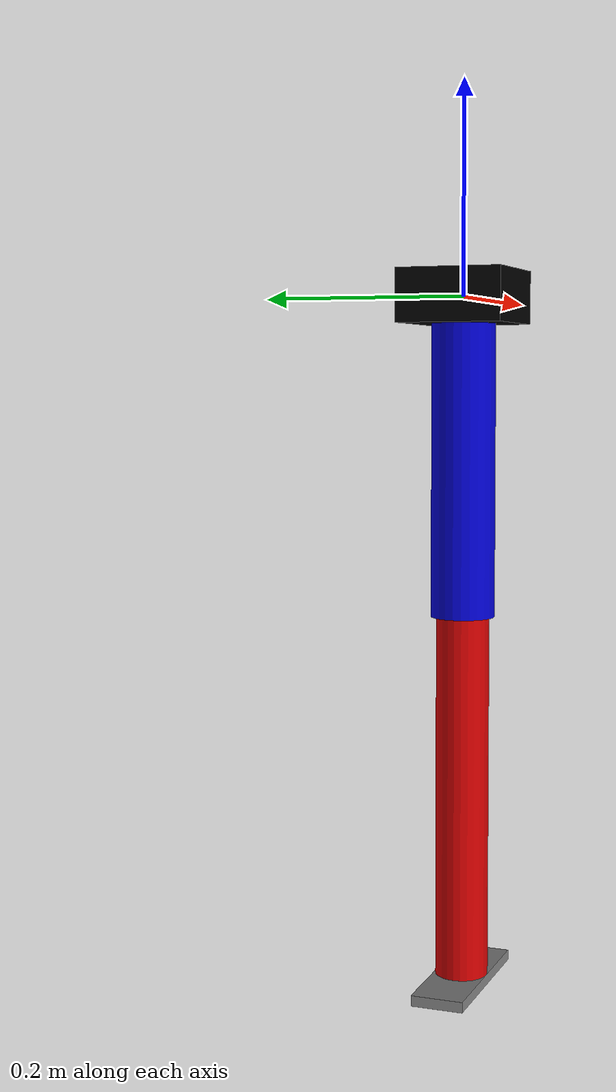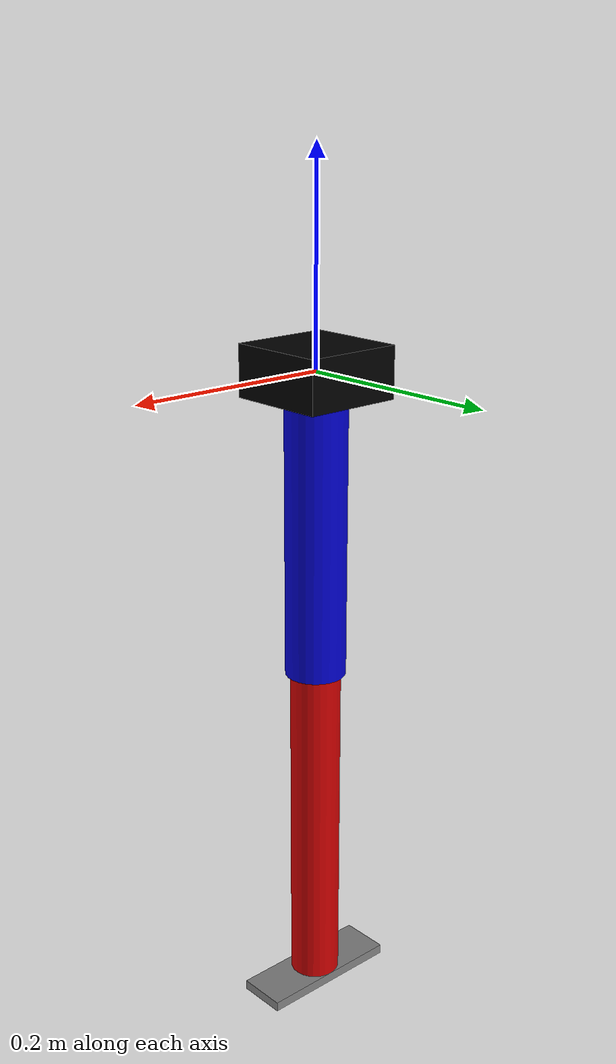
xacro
<?xml version="1.0"?>
<robot name="exoskeleton_leg" xmlns:xacro="http://www.ros.org/wiki/xacro">

<!-- Base Link -->
<link name="base_link">
  <inertial>
    <mass value="1.0"/>
    <inertia ixx="0.01" ixy="0" ixz="0" iyy="0.01" iyz="0" izz="0.01"/>
  </inertial>
  <visual>
    <geometry><box size="0.1 0.1 0.05"/></geometry>
    <material name="black"><color rgba="0 0 0 1"/></material>
  </visual>
  <collision><geometry><box size="0.1 0.1 0.05"/></geometry></collision>
</link>

<!-- Hip Joint -->
<joint name="hip_joint" type="revolute">
  <parent link="base_link"/>
  <child link="thigh_link"/>
  <!-- Position hip joint at the bottom of base_link (assuming base_link height is negligible) -->
  <origin xyz="0 0 -.15" rpy="0 0 0"/>
  <axis xyz="0 0 1"/>
  <dynamics damping="0.1" friction="0.01"/>
  <!--
    ISO 13485 Compliance: Prevents Excessive internal rotation (> 45°) and excessive external rotation (> 45°)
    internal rotation: 0 ~ 45°
    external rotation: 0 ~ 45°
    walking: 20° ~ 30°
  -->
  <limit effort="350" velocity="3.0" lower="-0.7" upper="0.7"/> <!-- 0.7rad ~= 40° -->
  <safety_controller k_velocity="20" soft_lower_limit="-0.665" soft_upper_limit="0.665"/> <!-- 0.665rad ~= 38° -->

</joint>

<link name="thigh_link">
  <visual>
    <geometry><cylinder length="0.3" radius="0.03"/></geometry>
    <material name="blue"><color rgba="0 0 0.8 1"/></material>
  </visual>
  <collision>
    <geometry><cylinder length="0.3" radius="0.03"/></geometry>
  </collision>

  <!-- Inertial (Adj. accordingly to the real setup) -->
  <inertial>
    <origin xyz="0 0 0.15"/>  <!-- certer of mass in the middle -->
    <mass value="0.5"/>
    <inertia ixx="0.00375" ixy="0" ixz="0" iyy="0.00375" iyz="0" izz="0.00045"/>
  </inertial>

  <!-- Gazebo Attr -->
  <gazebo reference="thigh_link">
    <mu1>0.2</mu1>  <!-- Contact Friction Coefficient -->
    <mu2>0.2</mu2>
    <kp>1000000</kp>  <!-- Contact Stiffness [N/m] -->
    <kd>100</kd>      <!-- Contact Damping [N·s/m] -->
  </gazebo>
</link>

<!-- Knee Joint -->
<joint name="knee_joint" type="revolute">
  <parent link="thigh_link"/>
  <child link="shank_link"/>
  <!-- Position knee joint at the end of thigh_link -->
  <origin xyz="0 0 -0.15" rpy="0 0 0"/> <!-- Negative Z to move down from thigh_link -->
  <axis xyz="0 1 0"/>
  <dynamics damping="0.05" friction="0.005"/>
  <!--
    ISO 13485 Compliance: Prevents overextension (lower="0") and excessive flexion (upper="2.0" ≈ 150°).
    walking: 0~1.22 rad
    stairs: 0~1.57 rad
    exercise: 0~2.09 rad
  -->
  <limit effort="300" velocity="2.5" lower="0" upper="2"/>
  <safety_controller k_velocity="30" soft_lower_limit="0.05" soft_upper_limit="1.9"/>
</joint>

<!-- Shank Link -->
<link name="shank_link">
  <visual>
    <geometry><cylinder length="0.35" radius="0.025"/></geometry>
    <origin xyz="0 0 -0.175" rpy="0 0 0"/>
    <material name="red"><color rgba="0.8 0 0 1"/></material>
  </visual>
  <collision><geometry><cylinder length="0.35" radius="0.025"/></geometry></collision>
  <inertial>
    <mass value="0.3"/>
    <inertia ixx="0.003" ixy="0" ixz="0" iyy="0.003" iyz="0" izz="0.003"/>
  </inertial>
  <!-- Gazebo Attr -->
  <gazebo reference="thigh_link">
    <mu1>0.2</mu1>  <!-- Contact Friction Coefficient -->
    <mu2>0.2</mu2>
    <kp>1000000</kp>  <!-- Contact Stiffness [N/m] -->
    <kd>100</kd>      <!-- Contact Damping [N·s/m] -->
  </gazebo>
</link>

<!-- Ankle Joint -->
<joint name="ankle_joint" type="revolute">
  <parent link="shank_link"/>
  <child link="foot_link"/>
  <!-- Position ankle joint at the end of shank_link -->
  <origin xyz="0 0 -0.35" rpy="0 0 0"/> <!-- Negative Z to move down from shank_link -->
  <axis xyz="0 1 0"/>
  <dynamics damping="0.03" friction="0.005"/>
  <!--
    typical ROM for ankle joint is 20° dorsiflexion and 50° plantarflexion
    Dorsiflexion (upward movement)‌: 0 - 20° (0 - 0.35rad)
    Plantarflexion (downward movement)‌: 0 - 55° (0 - 0.96rad)
  -->
  <limit effort="300" velocity="3.0" lower="-0.3" upper="0.3"/>
  <safety_controller k_velocity="50" soft_lower_limit="-0.25" soft_upper_limit="0.25"/>
</joint>

<!-- Foot Link -->
<link name="foot_link">
  <visual>
    <geometry><box size="0.15 0.05 0.01"/></geometry>
    <material name="gray"><color rgba="0.5 0.5 0.5 1"/></material>
  </visual>
  <collision><geometry><box size="0.15 0.05 0.01"/></geometry></collision>
  <inertial>
    <mass value="0.1"/>
    <inertia ixx="0.0001" ixy="0" ixz="0" iyy="0.0001" iyz="0" izz="0.0001"/>
  </inertial>
  <!-- Gazebo Attr -->
  <gazebo reference="thigh_link">
    <mu1>0.2</mu1>  <!-- Contact Friction Coefficient -->
    <mu2>0.2</mu2>
    <kp>1000000</kp>  <!-- Contact Stiffness [N/m] -->
    <kd>100</kd>      <!-- Contact Damping [N·s/m] -->
  </gazebo>
</link>

<!-- Transmissions -->
<transmission name="hip_transmission">
  <type>transmission_interface/SimpleTransmission</type>
  <actuator name="hip_motor">
    <hardwareInterface>Effort</hardwareInterface>
  </actuator>
  <joint name="hip_joint"/>
</transmission>

<transmission name="knee_transmission">
  <type>transmission_interface/SimpleTransmission</type>
  <actuator name="knee_motor">
    <hardwareInterface>Effort</hardwareInterface>
  </actuator>
  <joint name="knee_joint"/>
</transmission>

<transmission name="ankle_transmission">
  <type>transmission_interface/SimpleTransmission</type>
  <actuator name="ankle_motor">
    <hardwareInterface>Effort</hardwareInterface>
  </actuator>
  <joint name="ankle_joint"/>
</transmission>

<!-- Gazebo plugins -->
<!-- IMU -->
<gazebo reference="thigh_link">
  <sensor type="imu" name="thigh_imu">
    <always_on>true</always_on>
    <update_rate>100</update_rate>
  </sensor>
</gazebo>

<!-- Force Torque Sensors -->
<gazebo reference="thigh_link">
  <sensor name="hip_torque_sensor" type="force_torque">
    <update_rate>100</update_rate>
    <plugin filename="libgazebo_ros_ft_sensor.so" name="ft_sensor_plugin">
      <topic>hip_joint_torque</topic>
      <update_rate>100</update_rate>
    </plugin>
    <force_torque>
      <frame>child</frame>
      <measure_direction>child_to_parent</measure_direction>
    </force_torque>
    <noise>
      <type>gaussian</type>
      <mean>0</mean>
      <stddev>0.02</stddev>  <!-- 2% std noise -->
    </noise>
  </sensor>
</gazebo>

<gazebo reference="shank_link">
  <sensor name="knee_torque_sensor" type="force_torque">
    <update_rate>100</update_rate>
    <plugin filename="libgazebo_ros_ft_sensor.so" name="ft_sensor_plugin">
      <topic>knee_joint_torque</topic>
      <update_rate>100</update_rate>
    </plugin>
    <force_torque>
      <frame>child</frame>
      <measure_direction>child_to_parent</measure_direction>
    </force_torque>
    <noise>
      <type>gaussian</type>
      <mean>0</mean>
      <stddev>0.02</stddev>  <!-- 2% std noise -->
    </noise>
  </sensor>
</gazebo>

<gazebo reference="foot_link">
  <sensor name="ankle_torque_sensor" type="force_torque">
    <update_rate>100</update_rate>
    <plugin filename="libgazebo_ros_ft_sensor.so" name="ft_sensor_plugin">
      <topic>ankle_joint_torque</topic>
      <update_rate>100</update_rate>
    </plugin>
    <force_torque>
      <frame>child</frame>
      <measure_direction>child_to_parent</measure_direction>
    </force_torque>
    <noise>
      <type>gaussian</type>
      <mean>0</mean>
      <stddev>0.02</stddev>  <!-- 2% std noise -->
    </noise>
  </sensor>
</gazebo>

  <!-- Contact Sensor -->
  <gazebo reference="foot_link">
    <sensor type="contact" name="foot_contact">
      <always_on>true</always_on>
      <update_rate>50</update_rate>
    </sensor>
  </gazebo>

  <gazebo>
    <plugin name="gazebo_ros_control" filename="libgazebo_ros_control.so">
      <robotNamespace>/exoskeleton</robotNamespace>
    </plugin>
  </gazebo>
</robot>
